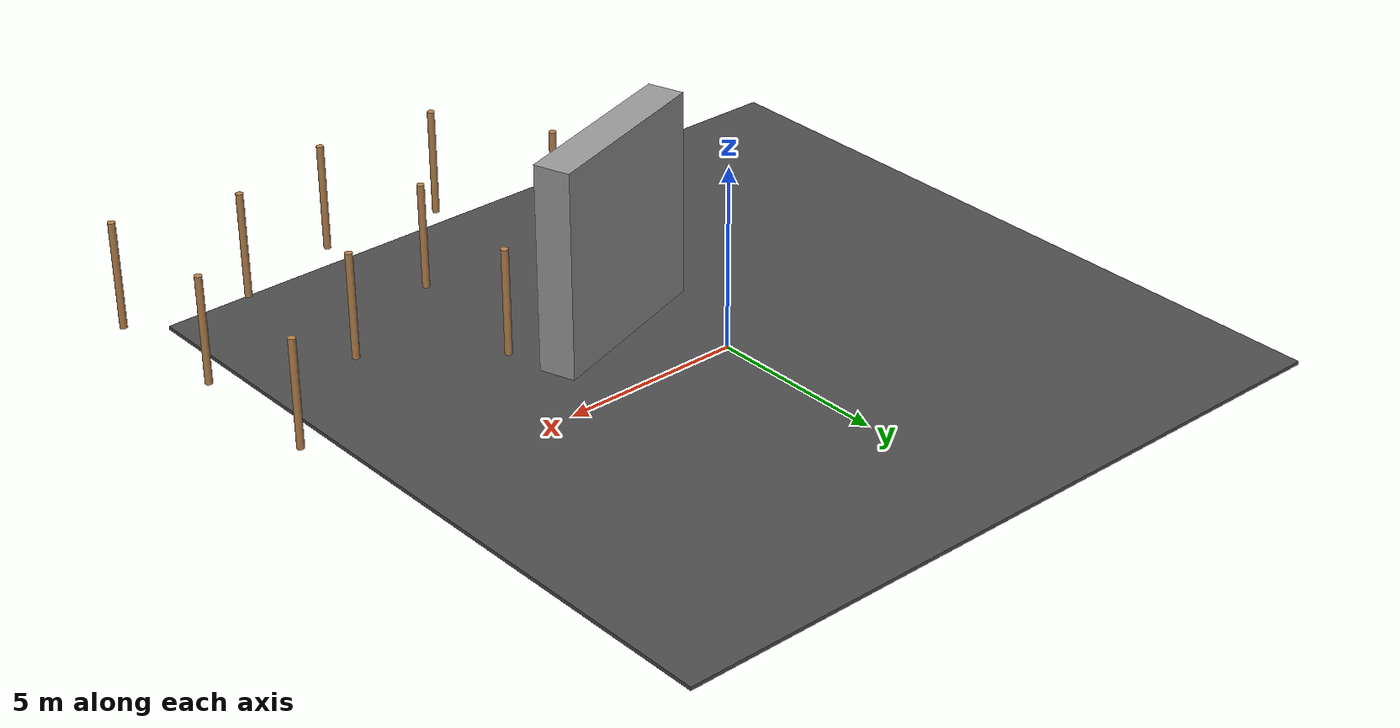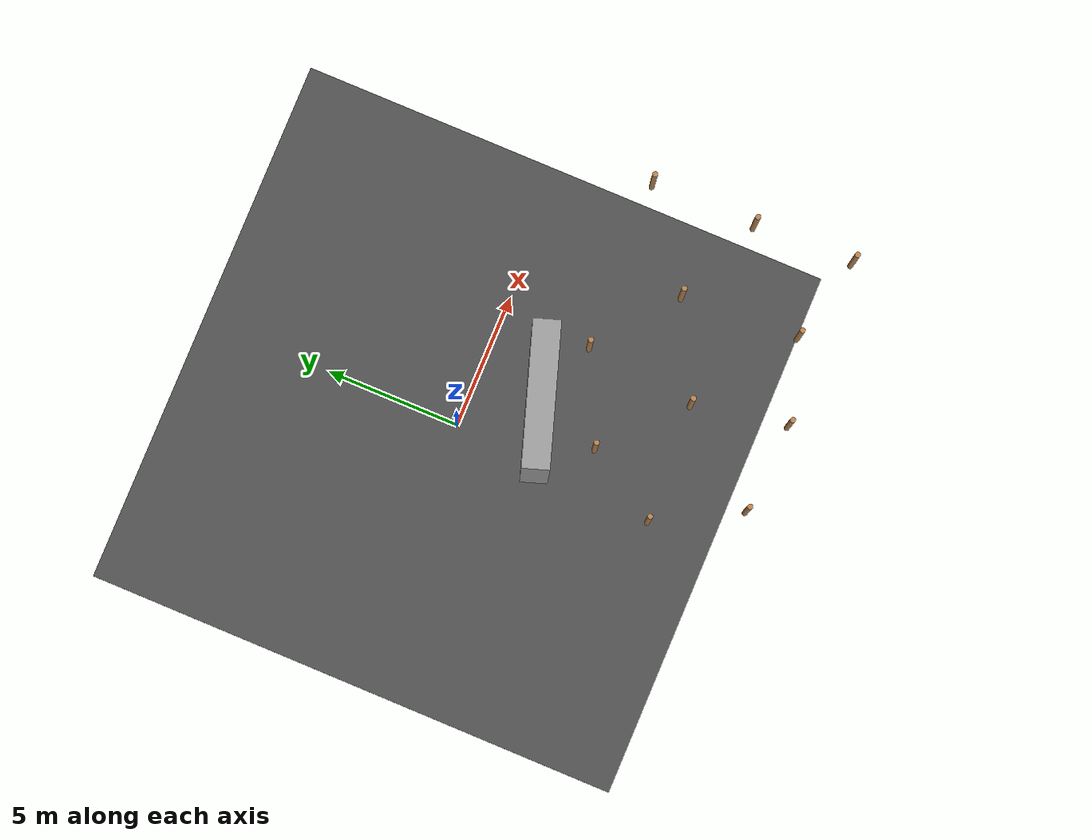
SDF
<sdf version="1.7">
 <world name="default">
  <model name="asphalt_plane">
   <pose>-0.054783 -0.070898 0 0 -0 0</pose>
   <static>1</static>
   <link name="link">
    <collision name="collision"><geometry><box><size>20 20 0.1</size></box></geometry></collision>
    <visual name="visual">
     <cast_shadows>0</cast_shadows>
     <geometry><box><size>20 20 0.1</size></box></geometry>
     <material>
      <script>
       <uri>model://asphalt_plane/materials/scripts</uri>
       <uri>model://asphalt_plane/materials/textures</uri>
       <name>vrc/asphalt</name>
      </script>
     </material>
    </visual>
   </link>
  </model>
  <model name="wooden_cylinder1_clone_12">
   <pose>1.05943 -4.89483 1e-05 0 -0 0</pose>
   <link name="wooden_cylinder::link_0">
    <pose>0 0 1.5 0 -0 0</pose>
    <inertial>
     <mass>1</mass>
     <inertia><ixx>0.145833</ixx><ixy>0</ixy><ixz>0</ixz><iyy>0.145833</iyy><iyz>0</iyz><izz>0.125</izz></inertia>
    </inertial>
    <visual name="visual">
     <geometry><cylinder><radius>0.1</radius><length>3</length></cylinder></geometry>
     <material>
      <lighting>1</lighting>
      <script><uri>file://media/materials/scripts/gazebo.material</uri><name>Gazebo/Wood</name></script>
      <ambient>0.3 0.3 0.3 1</ambient>
      <diffuse>0.7 0.7 0.7 1</diffuse>
      <specular>0.01 0.01 0.01 1</specular>
      <emissive>0 0 0 1</emissive>
      <shader type="vertex"><normal_map>__default__</normal_map></shader>
     </material>
    </visual>
    <collision name="collision">
     <geometry><cylinder><radius>0.1</radius><length>3</length></cylinder></geometry>
     <surface>
      <friction>
       <ode><mu>1</mu><mu2>1</mu2><fdir1>0 0 0</fdir1><slip1>0</slip1><slip2>0</slip2></ode>
       <torsional>
        <coefficient>1</coefficient>
        <patch_radius>0</patch_radius>
        <surface_radius>0</surface_radius>
        <use_patch_radius>1</use_patch_radius>
        <ode><slip>0</slip></ode>
       </torsional>
      </friction>
      <bounce><restitution_coefficient>0</restitution_coefficient><threshold>1e+06</threshold></bounce>
      <contact>
       <collide_without_contact>0</collide_without_contact>
       <collide_without_contact_bitmask>1</collide_without_contact_bitmask>
       <collide_bitmask>1</collide_bitmask>
       <ode>
        <soft_cfm>0</soft_cfm>
        <soft_erp>0.2</soft_erp>
        <kp>1e+13</kp>
        <kd>1</kd>
        <max_vel>0.01</max_vel>
        <min_depth>0</min_depth>
       </ode>
       <bullet>
        <split_impulse>1</split_impulse>
        <split_impulse_penetration_threshold>-0.01</split_impulse_penetration_threshold>
        <soft_cfm>0</soft_cfm>
        <soft_erp>0.2</soft_erp>
        <kp>1e+13</kp>
        <kd>1</kd>
       </bullet>
      </contact>
     </surface>
    </collision>
   </link>
   <static>1</static>
  </model>
  <model name="wooden_cylinder1_clone_14">
   <pose>-0.619086 -7.63483 -4e-05 0 -0 0</pose>
   <link name="wooden_cylinder::link_0">
    <pose>0 0 1.5 0 -0 0</pose>
    <inertial>
     <mass>1</mass>
     <inertia><ixx>0.145833</ixx><ixy>0</ixy><ixz>0</ixz><iyy>0.145833</iyy><iyz>0</iyz><izz>0.125</izz></inertia>
    </inertial>
    <visual name="visual">
     <geometry><cylinder><radius>0.1</radius><length>3</length></cylinder></geometry>
     <material>
      <lighting>1</lighting>
      <script><uri>file://media/materials/scripts/gazebo.material</uri><name>Gazebo/Wood</name></script>
      <ambient>0.3 0.3 0.3 1</ambient>
      <diffuse>0.7 0.7 0.7 1</diffuse>
      <specular>0.01 0.01 0.01 1</specular>
      <emissive>0 0 0 1</emissive>
      <shader type="vertex"><normal_map>__default__</normal_map></shader>
     </material>
    </visual>
    <collision name="collision">
     <geometry><cylinder><radius>0.1</radius><length>3</length></cylinder></geometry>
     <surface>
      <friction>
       <ode><mu>1</mu><mu2>1</mu2><fdir1>0 0 0</fdir1><slip1>0</slip1><slip2>0</slip2></ode>
       <torsional>
        <coefficient>1</coefficient>
        <patch_radius>0</patch_radius>
        <surface_radius>0</surface_radius>
        <use_patch_radius>1</use_patch_radius>
        <ode><slip>0</slip></ode>
       </torsional>
      </friction>
      <bounce><restitution_coefficient>0</restitution_coefficient><threshold>1e+06</threshold></bounce>
      <contact>
       <collide_without_contact>0</collide_without_contact>
       <collide_without_contact_bitmask>1</collide_without_contact_bitmask>
       <collide_bitmask>1</collide_bitmask>
       <ode>
        <soft_cfm>0</soft_cfm>
        <soft_erp>0.2</soft_erp>
        <kp>1e+13</kp>
        <kd>1</kd>
        <max_vel>0.01</max_vel>
        <min_depth>0</min_depth>
       </ode>
       <bullet>
        <split_impulse>1</split_impulse>
        <split_impulse_penetration_threshold>-0.01</split_impulse_penetration_threshold>
        <soft_cfm>0</soft_cfm>
        <soft_erp>0.2</soft_erp>
        <kp>1e+13</kp>
        <kd>1</kd>
       </bullet>
      </contact>
     </surface>
    </collision>
   </link>
   <static>1</static>
  </model>
  <model name="wooden_cylinder1_clone_18">
   <pose>1.05229 -10.7459 3e-05 0 -0 0</pose>
   <link name="wooden_cylinder::link_0">
    <pose>0 0 1.5 0 -0 0</pose>
    <inertial>
     <mass>1</mass>
     <inertia><ixx>0.145833</ixx><ixy>0</ixy><ixz>0</ixz><iyy>0.145833</iyy><iyz>0</iyz><izz>0.125</izz></inertia>
    </inertial>
    <visual name="visual">
     <geometry><cylinder><radius>0.1</radius><length>3</length></cylinder></geometry>
     <material>
      <lighting>1</lighting>
      <script><uri>file://media/materials/scripts/gazebo.material</uri><name>Gazebo/Wood</name></script>
      <ambient>0.3 0.3 0.3 1</ambient>
      <diffuse>0.7 0.7 0.7 1</diffuse>
      <specular>0.01 0.01 0.01 1</specular>
      <emissive>0 0 0 1</emissive>
      <shader type="vertex"><normal_map>__default__</normal_map></shader>
     </material>
    </visual>
    <collision name="collision">
     <geometry><cylinder><radius>0.1</radius><length>3</length></cylinder></geometry>
     <surface>
      <friction>
       <ode><mu>1</mu><mu2>1</mu2><fdir1>0 0 0</fdir1><slip1>0</slip1><slip2>0</slip2></ode>
       <torsional>
        <coefficient>1</coefficient>
        <patch_radius>0</patch_radius>
        <surface_radius>0</surface_radius>
        <use_patch_radius>1</use_patch_radius>
        <ode><slip>0</slip></ode>
       </torsional>
      </friction>
      <bounce><restitution_coefficient>0</restitution_coefficient><threshold>1e+06</threshold></bounce>
      <contact>
       <collide_without_contact>0</collide_without_contact>
       <collide_without_contact_bitmask>1</collide_without_contact_bitmask>
       <collide_bitmask>1</collide_bitmask>
       <ode>
        <soft_cfm>0</soft_cfm>
        <soft_erp>0.2</soft_erp>
        <kp>1e+13</kp>
        <kd>1</kd>
        <max_vel>0.01</max_vel>
        <min_depth>0</min_depth>
       </ode>
       <bullet>
        <split_impulse>1</split_impulse>
        <split_impulse_penetration_threshold>-0.01</split_impulse_penetration_threshold>
        <soft_cfm>0</soft_cfm>
        <soft_erp>0.2</soft_erp>
        <kp>1e+13</kp>
        <kd>1</kd>
       </bullet>
      </contact>
     </surface>
    </collision>
   </link>
   <static>1</static>
  </model>
  <model name="wooden_cylinder1_clone_19">
   <pose>7.54901 -10.0816 0.00023 0 -0 0</pose>
   <link name="wooden_cylinder::link_0">
    <pose>0 0 1.5 0 -0 0</pose>
    <inertial>
     <mass>1</mass>
     <inertia><ixx>0.145833</ixx><ixy>0</ixy><ixz>0</ixz><iyy>0.145833</iyy><iyz>0</iyz><izz>0.125</izz></inertia>
    </inertial>
    <visual name="visual">
     <geometry><cylinder><radius>0.1</radius><length>3</length></cylinder></geometry>
     <material>
      <lighting>1</lighting>
      <script><uri>file://media/materials/scripts/gazebo.material</uri><name>Gazebo/Wood</name></script>
      <ambient>0.3 0.3 0.3 1</ambient>
      <diffuse>0.7 0.7 0.7 1</diffuse>
      <specular>0.01 0.01 0.01 1</specular>
      <emissive>0 0 0 1</emissive>
      <shader type="vertex"><normal_map>__default__</normal_map></shader>
     </material>
    </visual>
    <collision name="collision">
     <geometry><cylinder><radius>0.1</radius><length>3</length></cylinder></geometry>
     <surface>
      <friction>
       <ode><mu>1</mu><mu2>1</mu2><fdir1>0 0 0</fdir1><slip1>0</slip1><slip2>0</slip2></ode>
       <torsional>
        <coefficient>1</coefficient>
        <patch_radius>0</patch_radius>
        <surface_radius>0</surface_radius>
        <use_patch_radius>1</use_patch_radius>
        <ode><slip>0</slip></ode>
       </torsional>
      </friction>
      <bounce><restitution_coefficient>0</restitution_coefficient><threshold>1e+06</threshold></bounce>
      <contact>
       <collide_without_contact>0</collide_without_contact>
       <collide_without_contact_bitmask>1</collide_without_contact_bitmask>
       <collide_bitmask>1</collide_bitmask>
       <ode>
        <soft_cfm>0</soft_cfm>
        <soft_erp>0.2</soft_erp>
        <kp>1e+13</kp>
        <kd>1</kd>
        <max_vel>0.01</max_vel>
        <min_depth>0</min_depth>
       </ode>
       <bullet>
        <split_impulse>1</split_impulse>
        <split_impulse_penetration_threshold>-0.01</split_impulse_penetration_threshold>
        <soft_cfm>0</soft_cfm>
        <soft_erp>0.2</soft_erp>
        <kp>1e+13</kp>
        <kd>1</kd>
       </bullet>
      </contact>
     </surface>
    </collision>
   </link>
   <static>1</static>
  </model>
  <model name="wooden_cylinder1_clone_20">
   <pose>3.82649 -7.44946 -0.0001 0 -0 0</pose>
   <link name="wooden_cylinder::link_0">
    <pose>0 0 1.5 0 -0 0</pose>
    <inertial>
     <mass>1</mass>
     <inertia><ixx>0.145833</ixx><ixy>0</ixy><ixz>0</ixz><iyy>0.145833</iyy><iyz>0</iyz><izz>0.125</izz></inertia>
    </inertial>
    <visual name="visual">
     <geometry><cylinder><radius>0.1</radius><length>3</length></cylinder></geometry>
     <material>
      <lighting>1</lighting>
      <script><uri>file://media/materials/scripts/gazebo.material</uri><name>Gazebo/Wood</name></script>
      <ambient>0.3 0.3 0.3 1</ambient>
      <diffuse>0.7 0.7 0.7 1</diffuse>
      <specular>0.01 0.01 0.01 1</specular>
      <emissive>0 0 0 1</emissive>
      <shader type="vertex"><normal_map>__default__</normal_map></shader>
     </material>
    </visual>
    <collision name="collision">
     <geometry><cylinder><radius>0.1</radius><length>3</length></cylinder></geometry>
     <surface>
      <friction>
       <ode><mu>1</mu><mu2>1</mu2><fdir1>0 0 0</fdir1><slip1>0</slip1><slip2>0</slip2></ode>
       <torsional>
        <coefficient>1</coefficient>
        <patch_radius>0</patch_radius>
        <surface_radius>0</surface_radius>
        <use_patch_radius>1</use_patch_radius>
        <ode><slip>0</slip></ode>
       </torsional>
      </friction>
      <bounce><restitution_coefficient>0</restitution_coefficient><threshold>1e+06</threshold></bounce>
      <contact>
       <collide_without_contact>0</collide_without_contact>
       <collide_without_contact_bitmask>1</collide_without_contact_bitmask>
       <collide_bitmask>1</collide_bitmask>
       <ode>
        <soft_cfm>0</soft_cfm>
        <soft_erp>0.2</soft_erp>
        <kp>1e+13</kp>
        <kd>1</kd>
        <max_vel>0.01</max_vel>
        <min_depth>0</min_depth>
       </ode>
       <bullet>
        <split_impulse>1</split_impulse>
        <split_impulse_penetration_threshold>-0.01</split_impulse_penetration_threshold>
        <soft_cfm>0</soft_cfm>
        <soft_erp>0.2</soft_erp>
        <kp>1e+13</kp>
        <kd>1</kd>
       </bullet>
      </contact>
     </surface>
    </collision>
   </link>
   <static>1</static>
  </model>
  <model name="wooden_cylinder1_clone_21">
   <pose>4.4732 -10.9726 0.0001 0 -0 0</pose>
   <link name="wooden_cylinder::link_0">
    <pose>0 0 1.5 0 -0 0</pose>
    <inertial>
     <mass>1</mass>
     <inertia><ixx>0.145833</ixx><ixy>0</ixy><ixz>0</ixz><iyy>0.145833</iyy><iyz>0</iyz><izz>0.125</izz></inertia>
    </inertial>
    <visual name="visual">
     <geometry><cylinder><radius>0.1</radius><length>3</length></cylinder></geometry>
     <material>
      <lighting>1</lighting>
      <script><uri>file://media/materials/scripts/gazebo.material</uri><name>Gazebo/Wood</name></script>
      <ambient>0.3 0.3 0.3 1</ambient>
      <diffuse>0.7 0.7 0.7 1</diffuse>
      <specular>0.01 0.01 0.01 1</specular>
      <emissive>0 0 0 1</emissive>
      <shader type="vertex"><normal_map>__default__</normal_map></shader>
     </material>
    </visual>
    <collision name="collision">
     <geometry><cylinder><radius>0.1</radius><length>3</length></cylinder></geometry>
     <surface>
      <friction>
       <ode><mu>1</mu><mu2>1</mu2><fdir1>0 0 0</fdir1><slip1>0</slip1><slip2>0</slip2></ode>
       <torsional>
        <coefficient>1</coefficient>
        <patch_radius>0</patch_radius>
        <surface_radius>0</surface_radius>
        <use_patch_radius>1</use_patch_radius>
        <ode><slip>0</slip></ode>
       </torsional>
      </friction>
      <bounce><restitution_coefficient>0</restitution_coefficient><threshold>1e+06</threshold></bounce>
      <contact>
       <collide_without_contact>0</collide_without_contact>
       <collide_without_contact_bitmask>1</collide_without_contact_bitmask>
       <collide_bitmask>1</collide_bitmask>
       <ode>
        <soft_cfm>0</soft_cfm>
        <soft_erp>0.2</soft_erp>
        <kp>1e+13</kp>
        <kd>1</kd>
        <max_vel>0.01</max_vel>
        <min_depth>0</min_depth>
       </ode>
       <bullet>
        <split_impulse>1</split_impulse>
        <split_impulse_penetration_threshold>-0.01</split_impulse_penetration_threshold>
        <soft_cfm>0</soft_cfm>
        <soft_erp>0.2</soft_erp>
        <kp>1e+13</kp>
        <kd>1</kd>
       </bullet>
      </contact>
     </surface>
    </collision>
   </link>
   <static>1</static>
  </model>
  <model name="wooden_cylinder1_clone_23">
   <pose>4.35296 -3.31184 -0.00018 0 -0 0</pose>
   <link name="wooden_cylinder::link_0">
    <pose>0 0 1.5 0 -0 0</pose>
    <inertial>
     <mass>1</mass>
     <inertia><ixx>0.145833</ixx><ixy>0</ixy><ixz>0</ixz><iyy>0.145833</iyy><iyz>0</iyz><izz>0.125</izz></inertia>
    </inertial>
    <visual name="visual">
     <geometry><cylinder><radius>0.1</radius><length>3</length></cylinder></geometry>
     <material>
      <lighting>1</lighting>
      <script><uri>file://media/materials/scripts/gazebo.material</uri><name>Gazebo/Wood</name></script>
      <ambient>0.3 0.3 0.3 1</ambient>
      <diffuse>0.7 0.7 0.7 1</diffuse>
      <specular>0.01 0.01 0.01 1</specular>
      <emissive>0 0 0 1</emissive>
      <shader type="vertex"><normal_map>__default__</normal_map></shader>
     </material>
    </visual>
    <collision name="collision">
     <geometry><cylinder><radius>0.1</radius><length>3</length></cylinder></geometry>
     <surface>
      <friction>
       <ode><mu>1</mu><mu2>1</mu2><fdir1>0 0 0</fdir1><slip1>0</slip1><slip2>0</slip2></ode>
       <torsional>
        <coefficient>1</coefficient>
        <patch_radius>0</patch_radius>
        <surface_radius>0</surface_radius>
        <use_patch_radius>1</use_patch_radius>
        <ode><slip>0</slip></ode>
       </torsional>
      </friction>
      <bounce><restitution_coefficient>0</restitution_coefficient><threshold>1e+06</threshold></bounce>
      <contact>
       <collide_without_contact>0</collide_without_contact>
       <collide_without_contact_bitmask>1</collide_without_contact_bitmask>
       <collide_bitmask>1</collide_bitmask>
       <ode>
        <soft_cfm>0</soft_cfm>
        <soft_erp>0.2</soft_erp>
        <kp>1e+13</kp>
        <kd>1</kd>
        <max_vel>0.01</max_vel>
        <min_depth>0</min_depth>
       </ode>
       <bullet>
        <split_impulse>1</split_impulse>
        <split_impulse_penetration_threshold>-0.01</split_impulse_penetration_threshold>
        <soft_cfm>0</soft_cfm>
        <soft_erp>0.2</soft_erp>
        <kp>1e+13</kp>
        <kd>1</kd>
       </bullet>
      </contact>
     </surface>
    </collision>
   </link>
   <static>1</static>
  </model>
  <model name="wooden_cylinder1_clone_25">
   <pose>7.31258 -5.66031 -0.00017 0 -0 0</pose>
   <link name="wooden_cylinder::link_0">
    <pose>0 0 1.5 0 -0 0</pose>
    <inertial>
     <mass>1</mass>
     <inertia><ixx>0.145833</ixx><ixy>0</ixy><ixz>0</ixz><iyy>0.145833</iyy><iyz>0</iyz><izz>0.125</izz></inertia>
    </inertial>
    <visual name="visual">
     <geometry><cylinder><radius>0.1</radius><length>3</length></cylinder></geometry>
     <material>
      <lighting>1</lighting>
      <script><uri>file://media/materials/scripts/gazebo.material</uri><name>Gazebo/Wood</name></script>
      <ambient>0.3 0.3 0.3 1</ambient>
      <diffuse>0.7 0.7 0.7 1</diffuse>
      <specular>0.01 0.01 0.01 1</specular>
      <emissive>0 0 0 1</emissive>
      <shader type="vertex"><normal_map>__default__</normal_map></shader>
     </material>
    </visual>
    <collision name="collision">
     <geometry><cylinder><radius>0.1</radius><length>3</length></cylinder></geometry>
     <surface>
      <friction>
       <ode><mu>1</mu><mu2>1</mu2><fdir1>0 0 0</fdir1><slip1>0</slip1><slip2>0</slip2></ode>
       <torsional>
        <coefficient>1</coefficient>
        <patch_radius>0</patch_radius>
        <surface_radius>0</surface_radius>
        <use_patch_radius>1</use_patch_radius>
        <ode><slip>0</slip></ode>
       </torsional>
      </friction>
      <bounce><restitution_coefficient>0</restitution_coefficient><threshold>1e+06</threshold></bounce>
      <contact>
       <collide_without_contact>0</collide_without_contact>
       <collide_without_contact_bitmask>1</collide_without_contact_bitmask>
       <collide_bitmask>1</collide_bitmask>
       <ode>
        <soft_cfm>0</soft_cfm>
        <soft_erp>0.2</soft_erp>
        <kp>1e+13</kp>
        <kd>1</kd>
        <max_vel>0.01</max_vel>
        <min_depth>0</min_depth>
       </ode>
       <bullet>
        <split_impulse>1</split_impulse>
        <split_impulse_penetration_threshold>-0.01</split_impulse_penetration_threshold>
        <soft_cfm>0</soft_cfm>
        <soft_erp>0.2</soft_erp>
        <kp>1e+13</kp>
        <kd>1</kd>
       </bullet>
      </contact>
     </surface>
    </collision>
   </link>
   <static>1</static>
  </model>
  <model name="wooden_cylinder1_clone_28">
   <pose>10.6822 -7.09279 -0.00013 0 -0 0</pose>
   <link name="wooden_cylinder::link_0">
    <pose>0 0 1.5 0 -0 0</pose>
    <inertial>
     <mass>1</mass>
     <inertia><ixx>0.145833</ixx><ixy>0</ixy><ixz>0</ixz><iyy>0.145833</iyy><iyz>0</iyz><izz>0.125</izz></inertia>
    </inertial>
    <visual name="visual">
     <geometry><cylinder><radius>0.1</radius><length>3</length></cylinder></geometry>
     <material>
      <lighting>1</lighting>
      <script><uri>file://media/materials/scripts/gazebo.material</uri><name>Gazebo/Wood</name></script>
      <ambient>0.3 0.3 0.3 1</ambient>
      <diffuse>0.7 0.7 0.7 1</diffuse>
      <specular>0.01 0.01 0.01 1</specular>
      <emissive>0 0 0 1</emissive>
      <shader type="vertex"><normal_map>__default__</normal_map></shader>
     </material>
    </visual>
    <collision name="collision">
     <geometry><cylinder><radius>0.1</radius><length>3</length></cylinder></geometry>
     <surface>
      <friction>
       <ode><mu>1</mu><mu2>1</mu2><fdir1>0 0 0</fdir1><slip1>0</slip1><slip2>0</slip2></ode>
       <torsional>
        <coefficient>1</coefficient>
        <patch_radius>0</patch_radius>
        <surface_radius>0</surface_radius>
        <use_patch_radius>1</use_patch_radius>
        <ode><slip>0</slip></ode>
       </torsional>
      </friction>
      <bounce><restitution_coefficient>0</restitution_coefficient><threshold>1e+06</threshold></bounce>
      <contact>
       <collide_without_contact>0</collide_without_contact>
       <collide_without_contact_bitmask>1</collide_without_contact_bitmask>
       <collide_bitmask>1</collide_bitmask>
       <ode>
        <soft_cfm>0</soft_cfm>
        <soft_erp>0.2</soft_erp>
        <kp>1e+13</kp>
        <kd>1</kd>
        <max_vel>0.01</max_vel>
        <min_depth>0</min_depth>
       </ode>
       <bullet>
        <split_impulse>1</split_impulse>
        <split_impulse_penetration_threshold>-0.01</split_impulse_penetration_threshold>
        <soft_cfm>0</soft_cfm>
        <soft_erp>0.2</soft_erp>
        <kp>1e+13</kp>
        <kd>1</kd>
       </bullet>
      </contact>
     </surface>
    </collision>
   </link>
   <static>1</static>
  </model>
  <model name="wooden_cylinder1_clone_40">
   <pose>10.6858 -3.14404 6e-05 0 -0 0</pose>
   <link name="wooden_cylinder::link_0">
    <pose>0 0 1.5 0 -0 0</pose>
    <inertial>
     <mass>1</mass>
     <inertia><ixx>0.145833</ixx><ixy>0</ixy><ixz>0</ixz><iyy>0.145833</iyy><iyz>0</iyz><izz>0.125</izz></inertia>
    </inertial>
    <visual name="visual">
     <geometry><cylinder><radius>0.1</radius><length>3</length></cylinder></geometry>
     <material>
      <lighting>1</lighting>
      <script><uri>file://media/materials/scripts/gazebo.material</uri><name>Gazebo/Wood</name></script>
      <ambient>0.3 0.3 0.3 1</ambient>
      <diffuse>0.7 0.7 0.7 1</diffuse>
      <specular>0.01 0.01 0.01 1</specular>
      <emissive>0 0 0 1</emissive>
      <shader type="vertex"><normal_map>__default__</normal_map></shader>
     </material>
    </visual>
    <collision name="collision">
     <geometry><cylinder><radius>0.1</radius><length>3</length></cylinder></geometry>
     <surface>
      <friction>
       <ode><mu>1</mu><mu2>1</mu2><fdir1>0 0 0</fdir1><slip1>0</slip1><slip2>0</slip2></ode>
       <torsional>
        <coefficient>1</coefficient>
        <patch_radius>0</patch_radius>
        <surface_radius>0</surface_radius>
        <use_patch_radius>1</use_patch_radius>
        <ode><slip>0</slip></ode>
       </torsional>
      </friction>
      <bounce><restitution_coefficient>0</restitution_coefficient><threshold>1e+06</threshold></bounce>
      <contact>
       <collide_without_contact>0</collide_without_contact>
       <collide_without_contact_bitmask>1</collide_without_contact_bitmask>
       <collide_bitmask>1</collide_bitmask>
       <ode>
        <soft_cfm>0</soft_cfm>
        <soft_erp>0.2</soft_erp>
        <kp>1e+13</kp>
        <kd>1</kd>
        <max_vel>0.01</max_vel>
        <min_depth>0</min_depth>
       </ode>
       <bullet>
        <split_impulse>1</split_impulse>
        <split_impulse_penetration_threshold>-0.01</split_impulse_penetration_threshold>
        <soft_cfm>0</soft_cfm>
        <soft_erp>0.2</soft_erp>
        <kp>1e+13</kp>
        <kd>1</kd>
       </bullet>
      </contact>
     </surface>
    </collision>
   </link>
   <static>1</static>
  </model>
  <model name="wooden_cylinder1_clone_47">
   <pose>10.7931 -10.8588 5e-05 0 -0 0</pose>
   <link name="wooden_cylinder::link_0">
    <pose>0 0 1.5 0 -0 0</pose>
    <inertial>
     <mass>1</mass>
     <inertia><ixx>0.145833</ixx><ixy>0</ixy><ixz>0</ixz><iyy>0.145833</iyy><iyz>0</iyz><izz>0.125</izz></inertia>
    </inertial>
    <visual name="visual">
     <geometry><cylinder><radius>0.1</radius><length>3</length></cylinder></geometry>
     <material>
      <lighting>1</lighting>
      <script><uri>file://media/materials/scripts/gazebo.material</uri><name>Gazebo/Wood</name></script>
      <ambient>0.3 0.3 0.3 1</ambient>
      <diffuse>0.7 0.7 0.7 1</diffuse>
      <specular>0.01 0.01 0.01 1</specular>
      <emissive>0 0 0 1</emissive>
      <shader type="vertex"><normal_map>__default__</normal_map></shader>
     </material>
    </visual>
    <collision name="collision">
     <geometry><cylinder><radius>0.1</radius><length>3</length></cylinder></geometry>
     <surface>
      <friction>
       <ode><mu>1</mu><mu2>1</mu2><fdir1>0 0 0</fdir1><slip1>0</slip1><slip2>0</slip2></ode>
       <torsional>
        <coefficient>1</coefficient>
        <patch_radius>0</patch_radius>
        <surface_radius>0</surface_radius>
        <use_patch_radius>1</use_patch_radius>
        <ode><slip>0</slip></ode>
       </torsional>
      </friction>
      <bounce><restitution_coefficient>0</restitution_coefficient><threshold>1e+06</threshold></bounce>
      <contact>
       <collide_without_contact>0</collide_without_contact>
       <collide_without_contact_bitmask>1</collide_without_contact_bitmask>
       <collide_bitmask>1</collide_bitmask>
       <ode>
        <soft_cfm>0</soft_cfm>
        <soft_erp>0.2</soft_erp>
        <kp>1e+13</kp>
        <kd>1</kd>
        <max_vel>0.01</max_vel>
        <min_depth>0</min_depth>
       </ode>
       <bullet>
        <split_impulse>1</split_impulse>
        <split_impulse_penetration_threshold>-0.01</split_impulse_penetration_threshold>
        <soft_cfm>0</soft_cfm>
        <soft_erp>0.2</soft_erp>
        <kp>1e+13</kp>
        <kd>1</kd>
       </bullet>
      </contact>
     </surface>
    </collision>
   </link>
   <static>1</static>
  </model>
  <model name="unit_box_clone_clone">
   <pose>1.62286 -2.50567 0.5 0 -0 0.317613</pose>
   <link name="link">
    <inertial>
     <mass>1</mass>
     <inertia>
      <ixx>0.166667</ixx>
      <ixy>0</ixy>
      <ixz>0</ixz>
      <iyy>0.166667</iyy>
      <iyz>0</iyz>
      <izz>0.166667</izz>
     </inertia>
    </inertial>
    <collision name="collision"><geometry><box><size>5.24625 1 10.3633</size></box></geometry></collision>
    <visual name="visual">
     <geometry><box><size>5.24625 1 10.3633</size></box></geometry>
     <material>
      <script><name>Gazebo/Grey</name><uri>file://media/materials/scripts/gazebo.material</uri></script>
     </material>
    </visual>
   </link>
  </model>
 </world>
</sdf>
